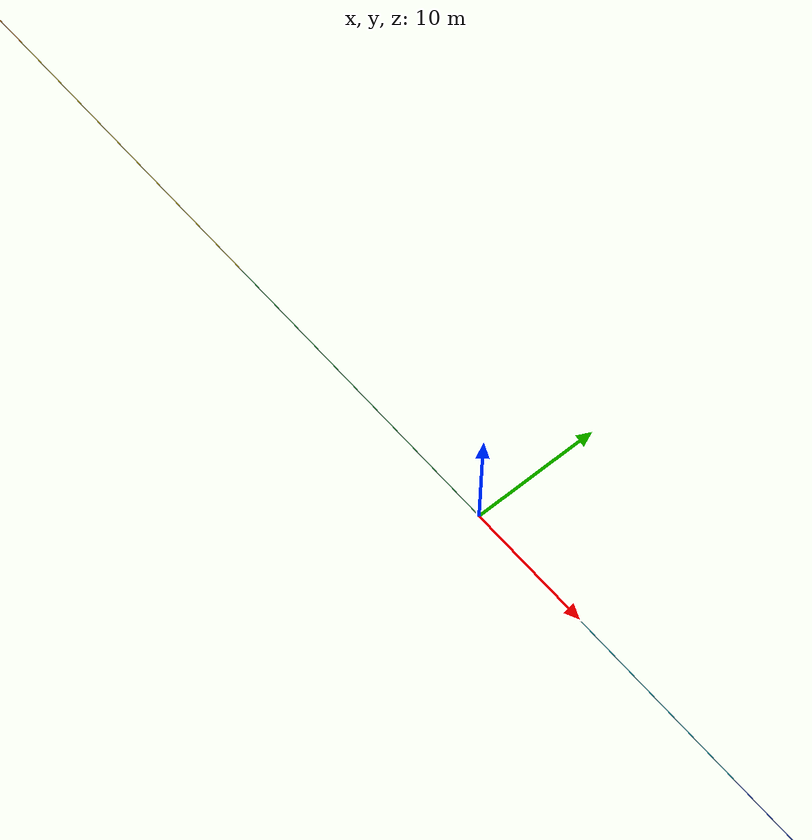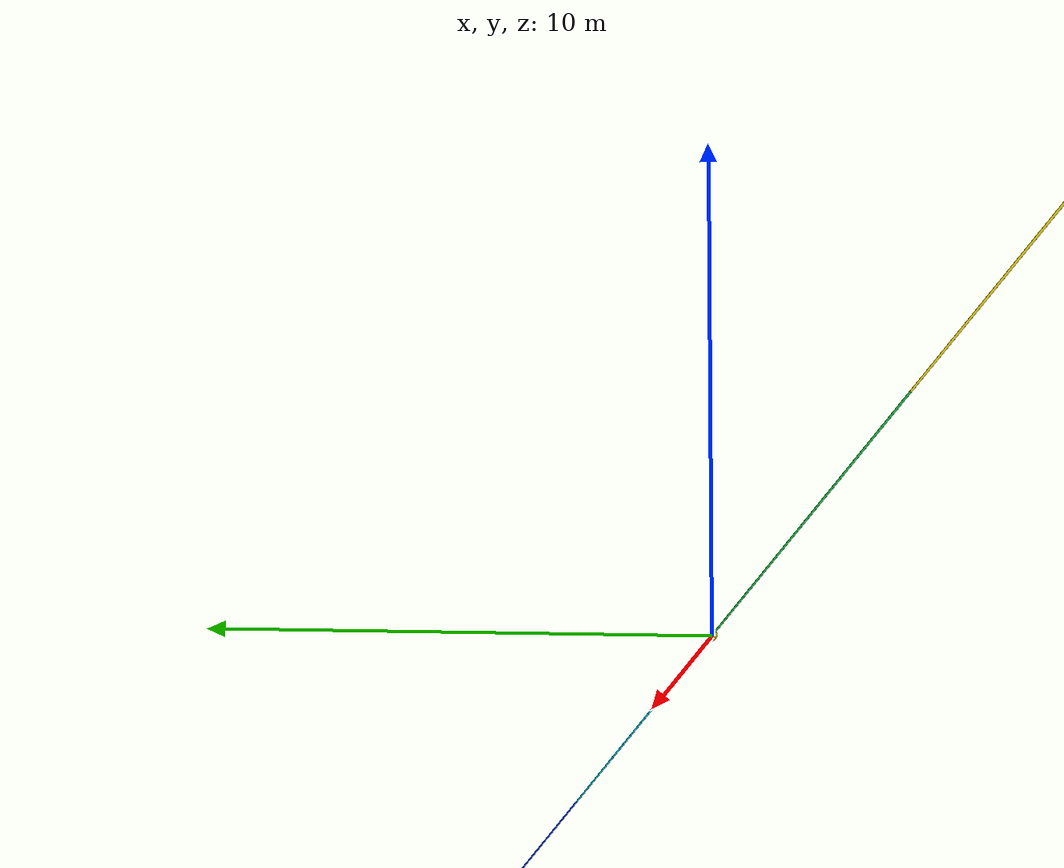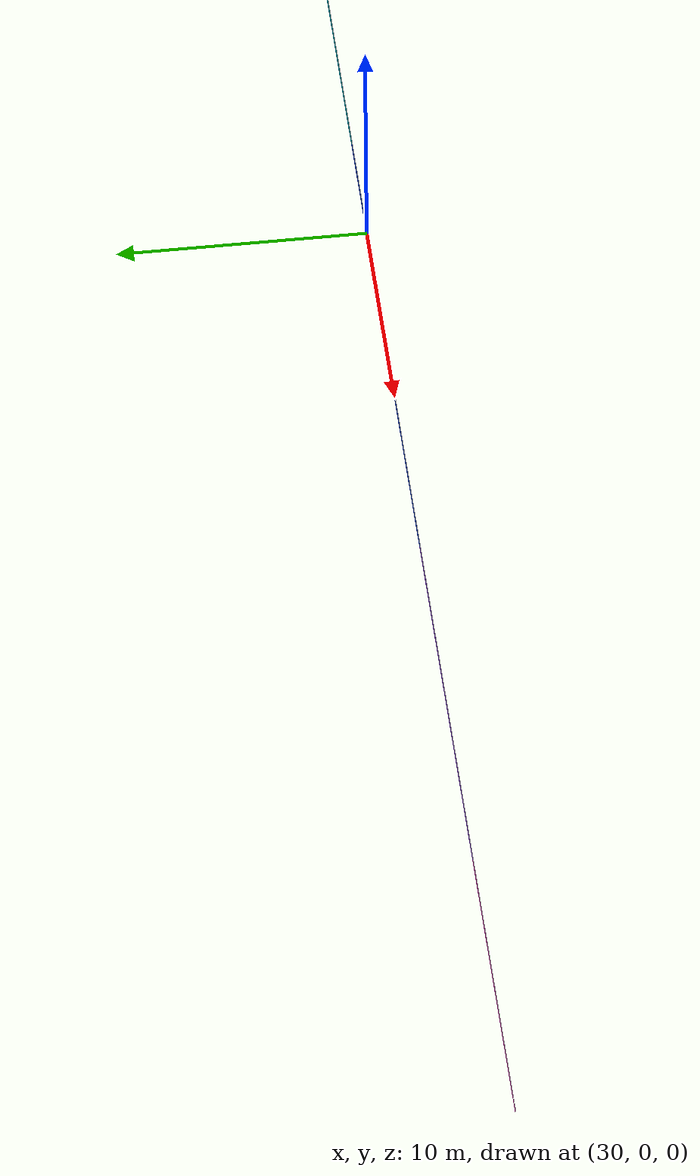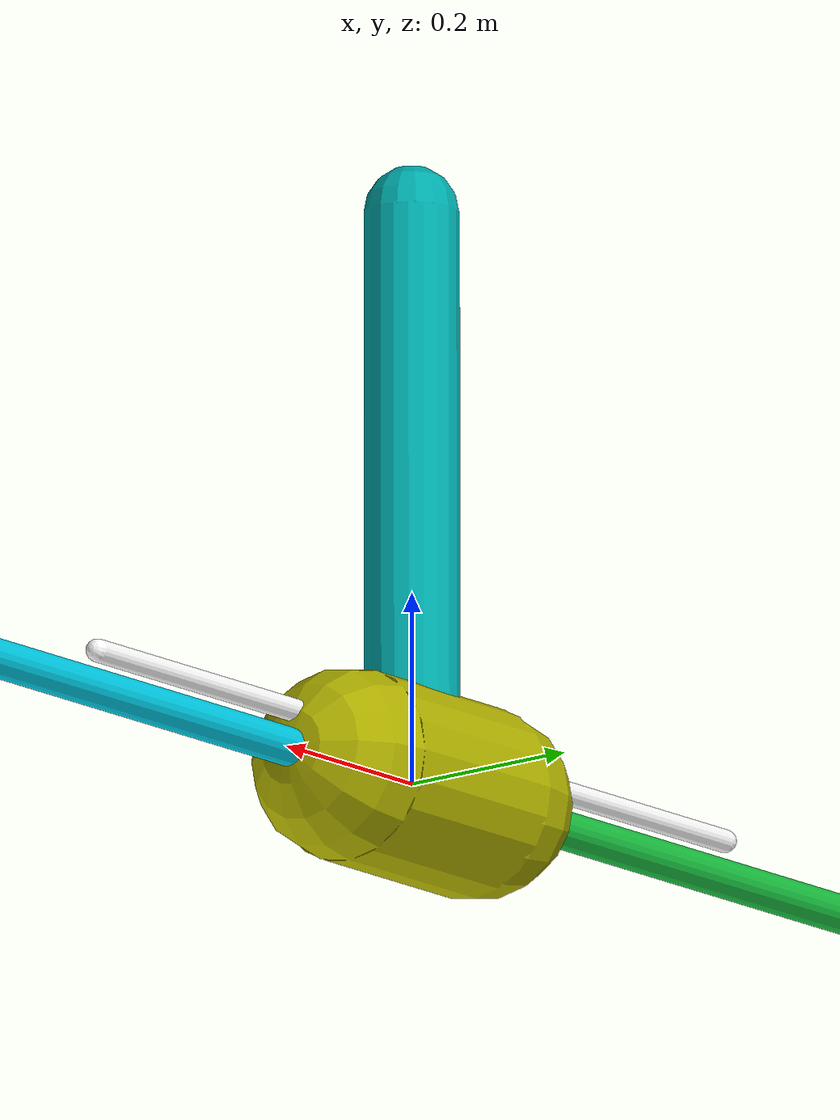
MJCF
<mujoco model="inverted pendulum">
 <compiler inertiafromgeom="true"/>
 <default>
  <joint armature="0" damping="1" limited="true"/>
  <geom contype="0" friction="1 0.1 0.1" rgba="0.7 0.7 0 1"/>
  <tendon/>
  <motor ctrlrange="-3 3"/>
 </default>
 <option gravity="0 0 -9.81" integrator="RK4" timestep="0.02"/>
 <size nstack="3000"/>
 <worldbody>
  <!--geom name="ground" type="plane" pos="0 0 0" /-->
  <geom name="rail_red" fromto="-100 0 0 -75 0 0" rgba="0.95 0.15 0.15 1" size="0.02" type="capsule"/>
  <geom name="rail_orange" fromto="-75 0 0 -50 0 0" rgba="1.0 0.55 0.05 1" size="0.02" type="capsule"/>
  <geom name="rail_yellow" fromto="-50 0 0 -25 0 0" rgba="0.95 0.85 0.05 1" size="0.02" type="capsule"/>
  <geom name="rail_green" fromto="-25 0 0 0 0 0" rgba="0.1 0.75 0.25 1" size="0.02" type="capsule"/>
  <geom name="rail_cyan" fromto="0 0 0 25 0 0" rgba="0.0 0.8 0.9 1" size="0.02" type="capsule"/>
  <geom name="rail_blue" fromto="25 0 0 50 0 0" rgba="0.1 0.3 1.0 1" size="0.02" type="capsule"/>
  <geom name="rail_purple" fromto="50 0 0 75 0 0" rgba="0.55 0.2 0.95 1" size="0.02" type="capsule"/>
  <geom name="rail_magenta" fromto="75 0 0 100 0 0" rgba="0.95 0.1 0.75 1" size="0.02" type="capsule"/>
  <geom name="rail_center_mark" fromto="-0.5 0 0.04 0.5 0 0.04" rgba="1 1 1 1" size="0.012" type="capsule"/>
  <body name="cart" pos="0 0 0">
   <joint axis="1 0 0" limited="true" name="slider" pos="0 0 0" range="-100 100" type="slide"/>
   <geom name="cart" pos="0 0 0" quat="0.707 0 0.707 0" size="0.1 0.1" type="capsule"/>
   <camera name="track_cart" mode="trackcom" pos="0 -4 1.2" xyaxes="1 0 0 0 0 1"/>
   <body name="pole" pos="0 0 0">
    <joint axis="0 1 0" limited="false" name="hinge" pos="0 0 0" type="hinge"/>
    <geom fromto="0 0 0 0.001 0 0.6" name="cpole" rgba="0 0.7 0.7 1" size="0.049 0.3" type="capsule"/>
   </body>
  </body>
 </worldbody>
 <actuator>
  <motor ctrllimited="true" ctrlrange="-10 10" gear="100" joint="slider" name="slide"/>
 </actuator>
</mujoco>
